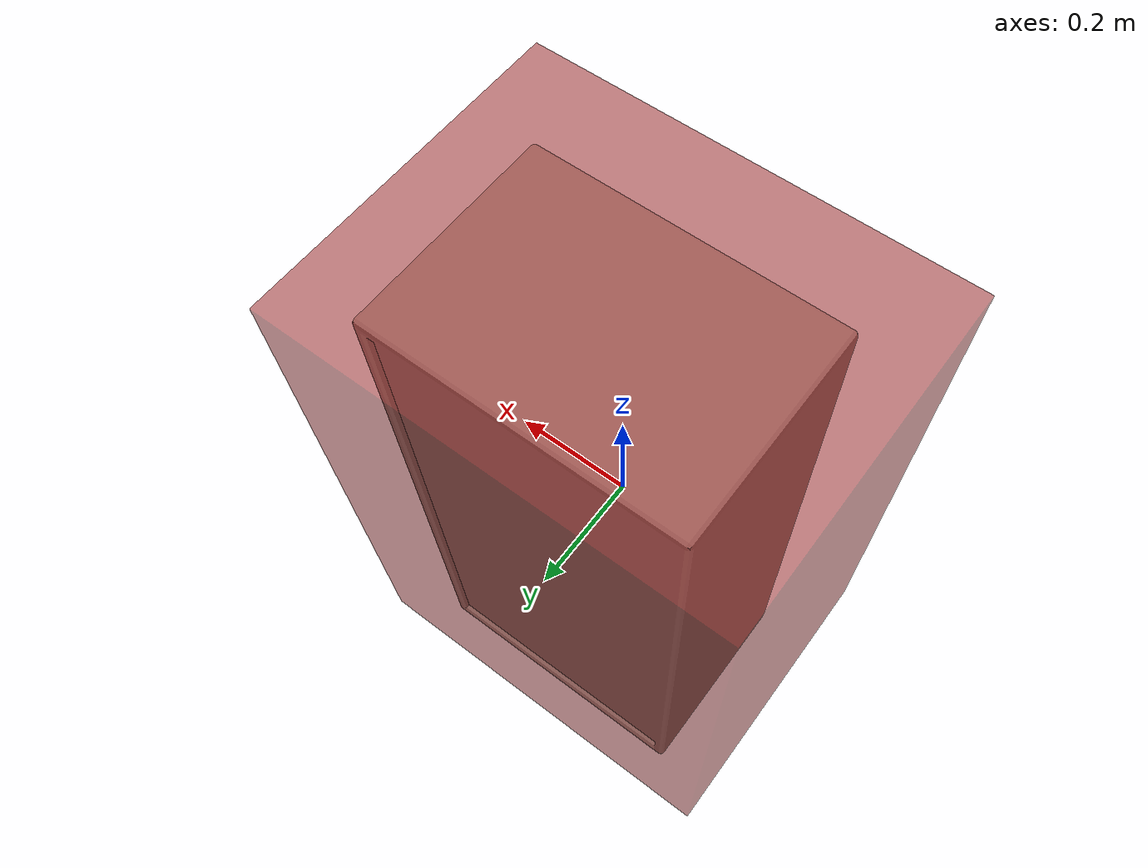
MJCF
<mujoco model="model">
  <asset>
    <texture file="visuals/material_0.png" name="tex-model" type="2d"/>
    <texture type="2d" name="image35" file="visuals/image35.png"/>
    <material name="model" reflectance="0.5" texrepeat="1 1" texture="tex-model" texuniform="false"/>
    <material name="TX_Kitche_Hood_3" texture="image35" specular="0.5" shininess="0.25"/>
    <mesh file="visuals/model_0.obj" name="model_0_vis" scale="1 1 1"/>
  </asset>
  <default>
    <default class="visual">
      <geom conaffinity="0" contype="0" group="1" type="mesh"/>
    </default>
    <default class="collision">
      <geom group="0" rgba="0.5 0 0 0.5"/>
    </default>
    <default class="region">
      <geom group="1" conaffinity="0" contype="0" rgba="0 1 0 0"/>
    </default>
  </default>
  <worldbody>
    <body>
      <!-- exterior bounding box points -->
      <!-- interior bounding box points -->
      <body name="object">
        <geom solimp="0.998 0.998 0.001" solref="0.001 1" density="100" friction="0.95 0.3 0.1" type="mesh" mesh="model_0_vis" material="TX_Kitche_Hood_3" class="visual"/>
        <geom class="collision" type="box" pos="0 0 0" size="0.34957106118641235 0.27213000394012843 0.5"/>
        <geom class="region" name="reg_main" type="box" pos="0.0 0.0 0.0" size="0.34957106118641235 0.27213000394012843 0.5"/>
      </body>
    </body>
  </worldbody>
</mujoco>
